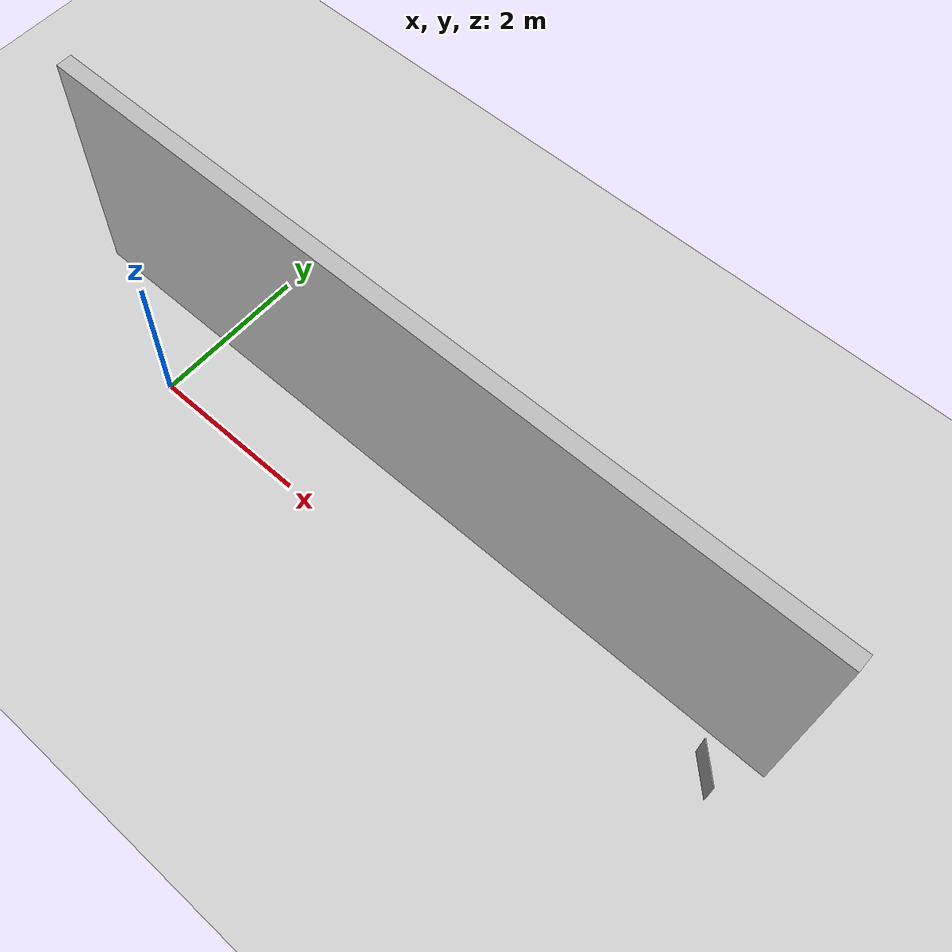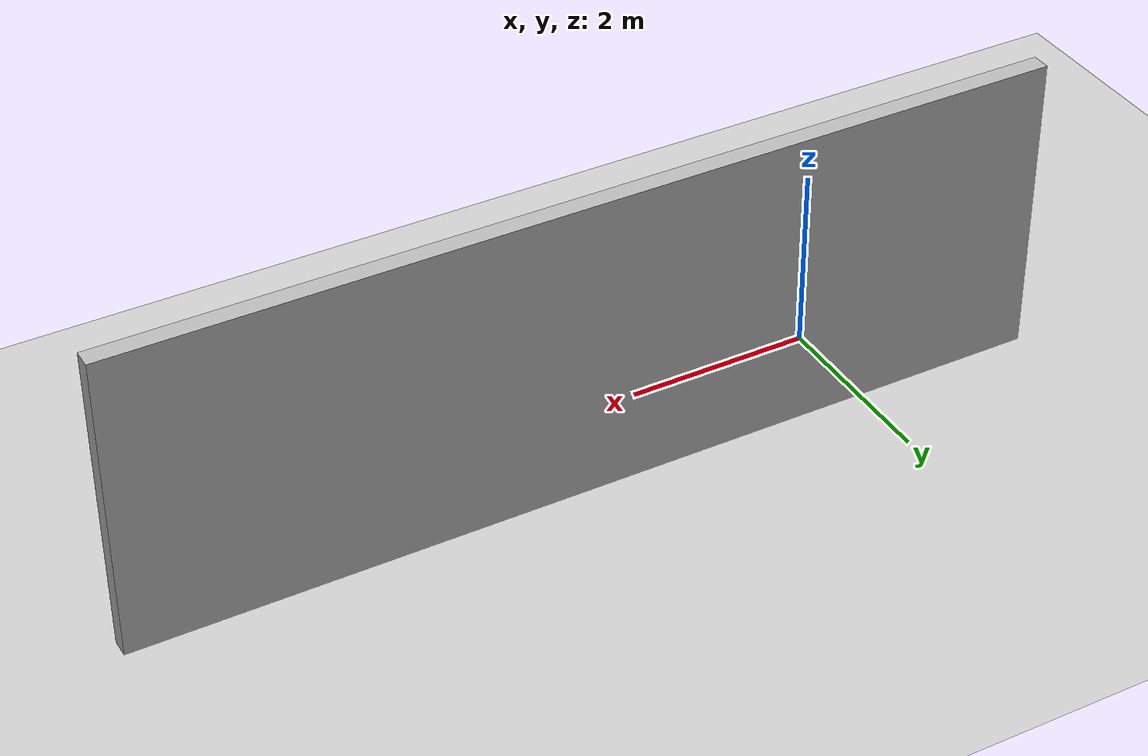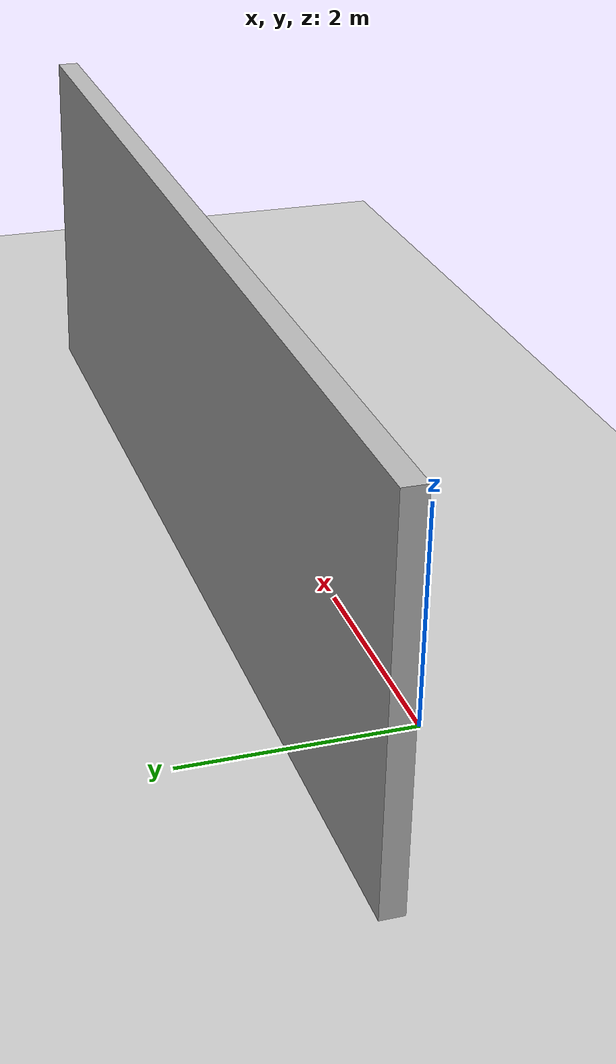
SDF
<sdf version="1.5">
 <world name="default">
  <model name="ground_plane">
   <static>1</static>
   <link name="link">
    <collision name="collision">
     <geometry><plane><normal>0 0 1</normal><size>100 100</size></plane></geometry>
     <surface><friction><ode><mu>100</mu><mu2>50</mu2></ode></friction></surface>
    </collision>
    <visual name="visual">
     <cast_shadows>0</cast_shadows>
     <geometry><plane><normal>0 0 1</normal><size>100 100</size></plane></geometry>
     <material>
      <script><uri>file://media/materials/scripts/gazebo.material</uri><name>Gazebo/Grey</name></script>
     </material>
    </visual>
   </link>
  </model>
  <model name="cutout_wall">
   <static>1</static>
   <link name="link">
    <pose>0 0 1.4 0 -0 0</pose>
    <collision name="collision">
     <geometry><box><size>10 0.2 3.8</size></box></geometry>
     <surface>
      <contact>
       <collide_without_contact>1</collide_without_contact>
       <collide_without_contact_bitmask>2</collide_without_contact_bitmask>
      </contact>
     </surface>
    </collision>
    <visual name="visual">
     <cast_shadows>0</cast_shadows>
     <geometry><box><size>10 0.2 3.8</size></box></geometry>
     <material>
      <script>
       <uri>model://cutout_wall/materials/scripts</uri>
       <uri>model://cutout_wall/materials/textures</uri>
       <name>drc_practice/cutout_wall</name>
      </script>
     </material>
    </visual>
    <sensor name="mud_contact" type="contact">
     <always_on>1</always_on>
     <update_rate>1000</update_rate>
     <contact><collision>collision</collision><topic>__default_topic__</topic></contact>
    </sensor>
   </link>
   <plugin name="gazebo_mud" filename="libMudPlugin.so">
    <contact_sensor_name>link/mud_contact</contact_sensor_name>
    <stiffness>0.0</stiffness>
    <damping>40.0</damping>
    <contact_surface_bitmask>2</contact_surface_bitmask>
    <link_name>drill::link</link_name>
   </plugin>
   <pose>3 1 0 0 -0 0</pose>
  </model>
  <model name="gate_number_1">
   <pose>7.49993 0.46744 0.25 0 -0 0.792507</pose>
   <static>1</static>
   <link name="link">
    <collision name="collision"><geometry><box><size>0.01 0.5 0.5</size></box></geometry></collision>
    <visual name="visual">
     <geometry><mesh><uri>model://gate_number_1/meshes/gate_number_1.dae</uri></mesh></geometry>
    </visual>
   </link>
  </model>
 </world>
</sdf>
